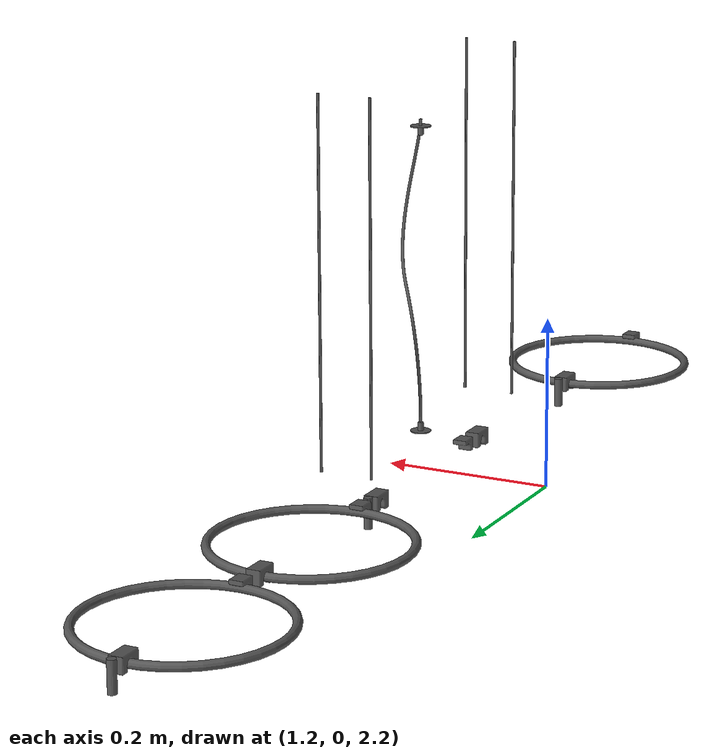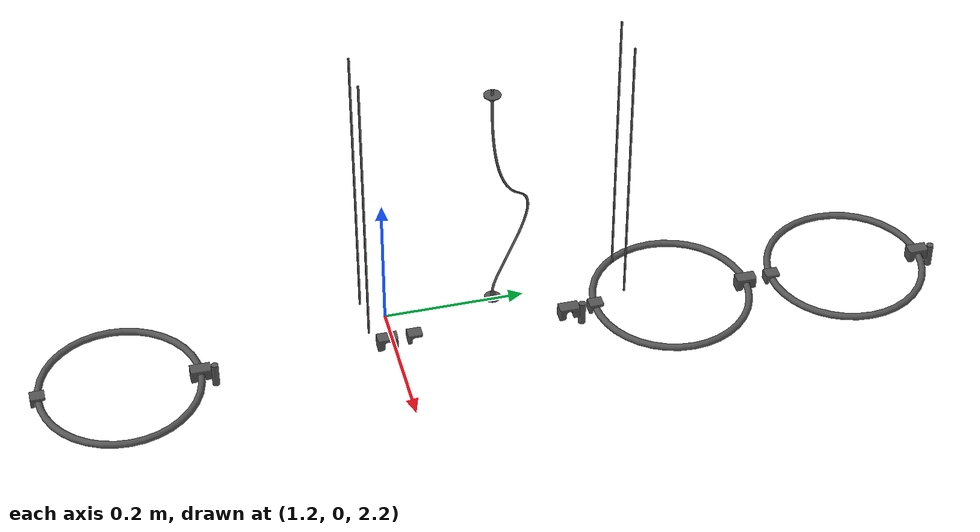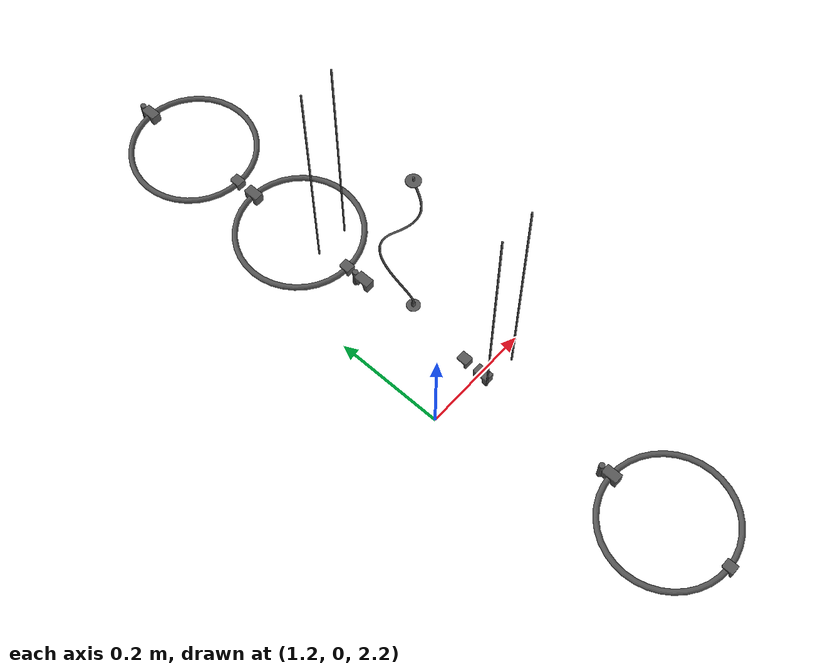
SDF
<sdf version="1.6">
 <world name="default">
  <model name="part40.obj">
   <static>1</static>
   <pose>-12.0 -13.9 0 0 0 0</pose>
   <link name="link_d40">
    <inertial>
     <mass>0</mass>
     <inertia>
      <ixx>0.166667</ixx>
      <ixy>0</ixy>
      <ixz>0</ixz>
      <iyy>0.166667</iyy>
      <iyz>0</iyz>
      <izz>0.166667</izz>
     </inertia>
    </inertial>
    <collision concave="yes" name="collision_40">
     <geometry><mesh><scale>.1 .1 .1</scale><uri>fatihrmutfak/part40.obj</uri></mesh></geometry>
    </collision>
    <visual name="visual">
     <geometry><mesh><scale>.1 .1 .1</scale><uri>fatihrmutfak/part40.obj</uri></mesh></geometry>
     <material>
      <ambient>1 0 0 1</ambient>
      <diffuse>0.337300 0.337300 0.337300 1</diffuse>
      <specular>0.1 0.1 0.1 1</specular>
      <emissive>0 0 0 0</emissive>
     </material>
    </visual>
   </link>
  </model>
  <model name="part41.obj">
   <static>1</static>
   <pose>-12.0 -13.9 0 0 0 0</pose>
   <link name="link_d41">
    <inertial>
     <mass>0</mass>
     <inertia>
      <ixx>0.166667</ixx>
      <ixy>0</ixy>
      <ixz>0</ixz>
      <iyy>0.166667</iyy>
      <iyz>0</iyz>
      <izz>0.166667</izz>
     </inertia>
    </inertial>
    <collision concave="yes" name="collision_41">
     <geometry><mesh><scale>.1 .1 .1</scale><uri>fatihrmutfak/part41.obj</uri></mesh></geometry>
    </collision>
    <visual name="visual">
     <geometry><mesh><scale>.1 .1 .1</scale><uri>fatihrmutfak/part41.obj</uri></mesh></geometry>
     <material>
      <ambient>1 0 0 1</ambient>
      <diffuse>0.337300 0.337300 0.337300 1</diffuse>
      <specular>0.1 0.1 0.1 1</specular>
      <emissive>0 0 0 0</emissive>
     </material>
    </visual>
   </link>
  </model>
  <model name="part42.obj">
   <static>1</static>
   <pose>-12.0 -13.9 0 0 0 0</pose>
   <link name="link_d42">
    <inertial>
     <mass>0</mass>
     <inertia>
      <ixx>0.166667</ixx>
      <ixy>0</ixy>
      <ixz>0</ixz>
      <iyy>0.166667</iyy>
      <iyz>0</iyz>
      <izz>0.166667</izz>
     </inertia>
    </inertial>
    <collision concave="yes" name="collision_42">
     <geometry><mesh><scale>.1 .1 .1</scale><uri>fatihrmutfak/part42.obj</uri></mesh></geometry>
    </collision>
    <visual name="visual">
     <geometry><mesh><scale>.1 .1 .1</scale><uri>fatihrmutfak/part42.obj</uri></mesh></geometry>
     <material>
      <ambient>1 0 0 1</ambient>
      <diffuse>0.337300 0.337300 0.337300 1</diffuse>
      <specular>0.1 0.1 0.1 1</specular>
      <emissive>0 0 0 0</emissive>
     </material>
    </visual>
   </link>
  </model>
  <model name="part43.obj">
   <static>1</static>
   <pose>-12.0 -13.9 0 0 0 0</pose>
   <link name="link_d43">
    <inertial>
     <mass>0</mass>
     <inertia>
      <ixx>0.166667</ixx>
      <ixy>0</ixy>
      <ixz>0</ixz>
      <iyy>0.166667</iyy>
      <iyz>0</iyz>
      <izz>0.166667</izz>
     </inertia>
    </inertial>
    <collision concave="yes" name="collision_43">
     <geometry><mesh><scale>.1 .1 .1</scale><uri>fatihrmutfak/part43.obj</uri></mesh></geometry>
    </collision>
    <visual name="visual">
     <geometry><mesh><scale>.1 .1 .1</scale><uri>fatihrmutfak/part43.obj</uri></mesh></geometry>
     <material>
      <ambient>1 0 0 1</ambient>
      <diffuse>0.337300 0.337300 0.337300 1</diffuse>
      <specular>0.1 0.1 0.1 1</specular>
      <emissive>0 0 0 0</emissive>
     </material>
    </visual>
   </link>
  </model>
  <model name="part44.obj">
   <static>1</static>
   <pose>-12.0 -13.9 0 0 0 0</pose>
   <link name="link_d44">
    <inertial>
     <mass>0</mass>
     <inertia>
      <ixx>0.166667</ixx>
      <ixy>0</ixy>
      <ixz>0</ixz>
      <iyy>0.166667</iyy>
      <iyz>0</iyz>
      <izz>0.166667</izz>
     </inertia>
    </inertial>
    <collision concave="yes" name="collision_44">
     <geometry><mesh><scale>.1 .1 .1</scale><uri>fatihrmutfak/part44.obj</uri></mesh></geometry>
    </collision>
    <visual name="visual">
     <geometry><mesh><scale>.1 .1 .1</scale><uri>fatihrmutfak/part44.obj</uri></mesh></geometry>
     <material>
      <ambient>1 0 0 1</ambient>
      <diffuse>0.337300 0.337300 0.337300 1</diffuse>
      <specular>0.1 0.1 0.1 1</specular>
      <emissive>0 0 0 0</emissive>
     </material>
    </visual>
   </link>
  </model>
  <model name="part45.obj">
   <static>1</static>
   <pose>-12.0 -13.9 0 0 0 0</pose>
   <link name="link_d45">
    <inertial>
     <mass>0</mass>
     <inertia>
      <ixx>0.166667</ixx>
      <ixy>0</ixy>
      <ixz>0</ixz>
      <iyy>0.166667</iyy>
      <iyz>0</iyz>
      <izz>0.166667</izz>
     </inertia>
    </inertial>
    <collision concave="yes" name="collision_45">
     <geometry><mesh><scale>.1 .1 .1</scale><uri>fatihrmutfak/part45.obj</uri></mesh></geometry>
    </collision>
    <visual name="visual">
     <geometry><mesh><scale>.1 .1 .1</scale><uri>fatihrmutfak/part45.obj</uri></mesh></geometry>
     <material>
      <ambient>1 0 0 1</ambient>
      <diffuse>0.337300 0.337300 0.337300 1</diffuse>
      <specular>0.1 0.1 0.1 1</specular>
      <emissive>0 0 0 0</emissive>
     </material>
    </visual>
   </link>
  </model>
  <model name="part46.obj">
   <static>1</static>
   <pose>-12.0 -13.9 0 0 0 0</pose>
   <link name="link_d46">
    <inertial>
     <mass>0</mass>
     <inertia>
      <ixx>0.166667</ixx>
      <ixy>0</ixy>
      <ixz>0</ixz>
      <iyy>0.166667</iyy>
      <iyz>0</iyz>
      <izz>0.166667</izz>
     </inertia>
    </inertial>
    <collision concave="yes" name="collision_46">
     <geometry><mesh><scale>.1 .1 .1</scale><uri>fatihrmutfak/part46.obj</uri></mesh></geometry>
    </collision>
    <visual name="visual">
     <geometry><mesh><scale>.1 .1 .1</scale><uri>fatihrmutfak/part46.obj</uri></mesh></geometry>
     <material>
      <ambient>1 0 0 1</ambient>
      <diffuse>0.337300 0.337300 0.337300 1</diffuse>
      <specular>0.1 0.1 0.1 1</specular>
      <emissive>0 0 0 0</emissive>
     </material>
    </visual>
   </link>
  </model>
  <model name="part47.obj">
   <static>1</static>
   <pose>-12.0 -13.9 0 0 0 0</pose>
   <link name="link_d47">
    <inertial>
     <mass>0</mass>
     <inertia>
      <ixx>0.166667</ixx>
      <ixy>0</ixy>
      <ixz>0</ixz>
      <iyy>0.166667</iyy>
      <iyz>0</iyz>
      <izz>0.166667</izz>
     </inertia>
    </inertial>
    <collision concave="yes" name="collision_47">
     <geometry><mesh><scale>.1 .1 .1</scale><uri>fatihrmutfak/part47.obj</uri></mesh></geometry>
    </collision>
    <visual name="visual">
     <geometry><mesh><scale>.1 .1 .1</scale><uri>fatihrmutfak/part47.obj</uri></mesh></geometry>
     <material>
      <ambient>1 0 0 1</ambient>
      <diffuse>0.337300 0.337300 0.337300 1</diffuse>
      <specular>0.1 0.1 0.1 1</specular>
      <emissive>0 0 0 0</emissive>
     </material>
    </visual>
   </link>
  </model>
  <model name="part48.obj">
   <static>1</static>
   <pose>-12.0 -13.9 0 0 0 0</pose>
   <link name="link_d48">
    <inertial>
     <mass>0</mass>
     <inertia>
      <ixx>0.166667</ixx>
      <ixy>0</ixy>
      <ixz>0</ixz>
      <iyy>0.166667</iyy>
      <iyz>0</iyz>
      <izz>0.166667</izz>
     </inertia>
    </inertial>
    <collision concave="yes" name="collision_48">
     <geometry><mesh><scale>.1 .1 .1</scale><uri>fatihrmutfak/part48.obj</uri></mesh></geometry>
    </collision>
    <visual name="visual">
     <geometry><mesh><scale>.1 .1 .1</scale><uri>fatihrmutfak/part48.obj</uri></mesh></geometry>
     <material>
      <ambient>1 0 0 1</ambient>
      <diffuse>0.337300 0.337300 0.337300 1</diffuse>
      <specular>0.1 0.1 0.1 1</specular>
      <emissive>0 0 0 0</emissive>
     </material>
    </visual>
   </link>
  </model>
  <model name="part49.obj">
   <static>1</static>
   <pose>-12.0 -13.9 0 0 0 0</pose>
   <link name="link_d49">
    <inertial>
     <mass>0</mass>
     <inertia>
      <ixx>0.166667</ixx>
      <ixy>0</ixy>
      <ixz>0</ixz>
      <iyy>0.166667</iyy>
      <iyz>0</iyz>
      <izz>0.166667</izz>
     </inertia>
    </inertial>
    <collision concave="yes" name="collision_49">
     <geometry><mesh><scale>.1 .1 .1</scale><uri>fatihrmutfak/part49.obj</uri></mesh></geometry>
    </collision>
    <visual name="visual">
     <geometry><mesh><scale>.1 .1 .1</scale><uri>fatihrmutfak/part49.obj</uri></mesh></geometry>
     <material>
      <ambient>1 0 0 1</ambient>
      <diffuse>0.337300 0.337300 0.337300 1</diffuse>
      <specular>0.1 0.1 0.1 1</specular>
      <emissive>0 0 0 0</emissive>
     </material>
    </visual>
   </link>
  </model>
  <model name="part50.obj">
   <static>1</static>
   <pose>-12.0 -13.9 0 0 0 0</pose>
   <link name="link_d50">
    <inertial>
     <mass>0</mass>
     <inertia>
      <ixx>0.166667</ixx>
      <ixy>0</ixy>
      <ixz>0</ixz>
      <iyy>0.166667</iyy>
      <iyz>0</iyz>
      <izz>0.166667</izz>
     </inertia>
    </inertial>
    <collision concave="yes" name="collision_50">
     <geometry><mesh><scale>.1 .1 .1</scale><uri>fatihrmutfak/part50.obj</uri></mesh></geometry>
    </collision>
    <visual name="visual">
     <geometry><mesh><scale>.1 .1 .1</scale><uri>fatihrmutfak/part50.obj</uri></mesh></geometry>
     <material>
      <ambient>1 0 0 1</ambient>
      <diffuse>0.337300 0.337300 0.337300 1</diffuse>
      <specular>0.1 0.1 0.1 1</specular>
      <emissive>0 0 0 0</emissive>
     </material>
    </visual>
   </link>
  </model>
  <model name="part51.obj">
   <static>1</static>
   <pose>-12.0 -13.9 0 0 0 0</pose>
   <link name="link_d51">
    <inertial>
     <mass>0</mass>
     <inertia>
      <ixx>0.166667</ixx>
      <ixy>0</ixy>
      <ixz>0</ixz>
      <iyy>0.166667</iyy>
      <iyz>0</iyz>
      <izz>0.166667</izz>
     </inertia>
    </inertial>
    <collision concave="yes" name="collision_51">
     <geometry><mesh><scale>.1 .1 .1</scale><uri>fatihrmutfak/part51.obj</uri></mesh></geometry>
    </collision>
    <visual name="visual">
     <geometry><mesh><scale>.1 .1 .1</scale><uri>fatihrmutfak/part51.obj</uri></mesh></geometry>
     <material>
      <ambient>1 0 0 1</ambient>
      <diffuse>0.337300 0.337300 0.337300 1</diffuse>
      <specular>0.1 0.1 0.1 1</specular>
      <emissive>0 0 0 0</emissive>
     </material>
    </visual>
   </link>
  </model>
  <model name="part52.obj">
   <static>1</static>
   <pose>-12.0 -13.9 0 0 0 0</pose>
   <link name="link_d52">
    <inertial>
     <mass>0</mass>
     <inertia>
      <ixx>0.166667</ixx>
      <ixy>0</ixy>
      <ixz>0</ixz>
      <iyy>0.166667</iyy>
      <iyz>0</iyz>
      <izz>0.166667</izz>
     </inertia>
    </inertial>
    <collision concave="yes" name="collision_52">
     <geometry><mesh><scale>.1 .1 .1</scale><uri>fatihrmutfak/part52.obj</uri></mesh></geometry>
    </collision>
    <visual name="visual">
     <geometry><mesh><scale>.1 .1 .1</scale><uri>fatihrmutfak/part52.obj</uri></mesh></geometry>
     <material>
      <ambient>1 0 0 1</ambient>
      <diffuse>0.337300 0.337300 0.337300 1</diffuse>
      <specular>0.1 0.1 0.1 1</specular>
      <emissive>0 0 0 0</emissive>
     </material>
    </visual>
   </link>
  </model>
  <model name="part53.obj">
   <static>1</static>
   <pose>-12.0 -13.9 0 0 0 0</pose>
   <link name="link_d53">
    <inertial>
     <mass>0</mass>
     <inertia>
      <ixx>0.166667</ixx>
      <ixy>0</ixy>
      <ixz>0</ixz>
      <iyy>0.166667</iyy>
      <iyz>0</iyz>
      <izz>0.166667</izz>
     </inertia>
    </inertial>
    <collision concave="yes" name="collision_53">
     <geometry><mesh><scale>.1 .1 .1</scale><uri>fatihrmutfak/part53.obj</uri></mesh></geometry>
    </collision>
    <visual name="visual">
     <geometry><mesh><scale>.1 .1 .1</scale><uri>fatihrmutfak/part53.obj</uri></mesh></geometry>
     <material>
      <ambient>1 0 0 1</ambient>
      <diffuse>0.337300 0.337300 0.337300 1</diffuse>
      <specular>0.1 0.1 0.1 1</specular>
      <emissive>0 0 0 0</emissive>
     </material>
    </visual>
   </link>
  </model>
  <model name="part54.obj">
   <static>1</static>
   <pose>-12.0 -13.9 0 0 0 0</pose>
   <link name="link_d54">
    <inertial>
     <mass>0</mass>
     <inertia>
      <ixx>0.166667</ixx>
      <ixy>0</ixy>
      <ixz>0</ixz>
      <iyy>0.166667</iyy>
      <iyz>0</iyz>
      <izz>0.166667</izz>
     </inertia>
    </inertial>
    <collision concave="yes" name="collision_54">
     <geometry><mesh><scale>.1 .1 .1</scale><uri>fatihrmutfak/part54.obj</uri></mesh></geometry>
    </collision>
    <visual name="visual">
     <geometry><mesh><scale>.1 .1 .1</scale><uri>fatihrmutfak/part54.obj</uri></mesh></geometry>
     <material>
      <ambient>1 0 0 1</ambient>
      <diffuse>0.337300 0.337300 0.337300 1</diffuse>
      <specular>0.1 0.1 0.1 1</specular>
      <emissive>0 0 0 0</emissive>
     </material>
    </visual>
   </link>
  </model>
  <model name="part55.obj">
   <static>1</static>
   <pose>-12.0 -13.9 0 0 0 0</pose>
   <link name="link_d55">
    <inertial>
     <mass>0</mass>
     <inertia>
      <ixx>0.166667</ixx>
      <ixy>0</ixy>
      <ixz>0</ixz>
      <iyy>0.166667</iyy>
      <iyz>0</iyz>
      <izz>0.166667</izz>
     </inertia>
    </inertial>
    <collision concave="yes" name="collision_55">
     <geometry><mesh><scale>.1 .1 .1</scale><uri>fatihrmutfak/part55.obj</uri></mesh></geometry>
    </collision>
    <visual name="visual">
     <geometry><mesh><scale>.1 .1 .1</scale><uri>fatihrmutfak/part55.obj</uri></mesh></geometry>
     <material>
      <ambient>1 0 0 1</ambient>
      <diffuse>0.337300 0.337300 0.337300 1</diffuse>
      <specular>0.1 0.1 0.1 1</specular>
      <emissive>0 0 0 0</emissive>
     </material>
    </visual>
   </link>
  </model>
  <model name="part56.obj">
   <static>1</static>
   <pose>-12.0 -13.9 0 0 0 0</pose>
   <link name="link_d56">
    <inertial>
     <mass>0</mass>
     <inertia>
      <ixx>0.166667</ixx>
      <ixy>0</ixy>
      <ixz>0</ixz>
      <iyy>0.166667</iyy>
      <iyz>0</iyz>
      <izz>0.166667</izz>
     </inertia>
    </inertial>
    <collision concave="yes" name="collision_56">
     <geometry><mesh><scale>.1 .1 .1</scale><uri>fatihrmutfak/part56.obj</uri></mesh></geometry>
    </collision>
    <visual name="visual">
     <geometry><mesh><scale>.1 .1 .1</scale><uri>fatihrmutfak/part56.obj</uri></mesh></geometry>
     <material>
      <ambient>1 0 0 1</ambient>
      <diffuse>0.337300 0.337300 0.337300 1</diffuse>
      <specular>0.1 0.1 0.1 1</specular>
      <emissive>0 0 0 0</emissive>
     </material>
    </visual>
   </link>
  </model>
  <model name="part57.obj">
   <static>1</static>
   <pose>-12.0 -13.9 0 0 0 0</pose>
   <link name="link_d57">
    <inertial>
     <mass>0</mass>
     <inertia>
      <ixx>0.166667</ixx>
      <ixy>0</ixy>
      <ixz>0</ixz>
      <iyy>0.166667</iyy>
      <iyz>0</iyz>
      <izz>0.166667</izz>
     </inertia>
    </inertial>
    <collision concave="yes" name="collision_57">
     <geometry><mesh><scale>.1 .1 .1</scale><uri>fatihrmutfak/part57.obj</uri></mesh></geometry>
    </collision>
    <visual name="visual">
     <geometry><mesh><scale>.1 .1 .1</scale><uri>fatihrmutfak/part57.obj</uri></mesh></geometry>
     <material>
      <ambient>1 0 0 1</ambient>
      <diffuse>0.337300 0.337300 0.337300 1</diffuse>
      <specular>0.1 0.1 0.1 1</specular>
      <emissive>0 0 0 0</emissive>
     </material>
    </visual>
   </link>
  </model>
  <model name="part58.obj">
   <static>1</static>
   <pose>-12.0 -13.9 0 0 0 0</pose>
   <link name="link_d58">
    <inertial>
     <mass>0</mass>
     <inertia>
      <ixx>0.166667</ixx>
      <ixy>0</ixy>
      <ixz>0</ixz>
      <iyy>0.166667</iyy>
      <iyz>0</iyz>
      <izz>0.166667</izz>
     </inertia>
    </inertial>
    <collision concave="yes" name="collision_58">
     <geometry><mesh><scale>.1 .1 .1</scale><uri>fatihrmutfak/part58.obj</uri></mesh></geometry>
    </collision>
    <visual name="visual">
     <geometry><mesh><scale>.1 .1 .1</scale><uri>fatihrmutfak/part58.obj</uri></mesh></geometry>
     <material>
      <ambient>1 0 0 1</ambient>
      <diffuse>0.337300 0.337300 0.337300 1</diffuse>
      <specular>0.1 0.1 0.1 1</specular>
      <emissive>0 0 0 0</emissive>
     </material>
    </visual>
   </link>
  </model>
  <model name="part59.obj">
   <static>1</static>
   <pose>-12.0 -13.9 0 0 0 0</pose>
   <link name="link_d59">
    <inertial>
     <mass>0</mass>
     <inertia>
      <ixx>0.166667</ixx>
      <ixy>0</ixy>
      <ixz>0</ixz>
      <iyy>0.166667</iyy>
      <iyz>0</iyz>
      <izz>0.166667</izz>
     </inertia>
    </inertial>
    <collision concave="yes" name="collision_59">
     <geometry><mesh><scale>.1 .1 .1</scale><uri>fatihrmutfak/part59.obj</uri></mesh></geometry>
    </collision>
    <visual name="visual">
     <geometry><mesh><scale>.1 .1 .1</scale><uri>fatihrmutfak/part59.obj</uri></mesh></geometry>
     <material>
      <ambient>1 0 0 1</ambient>
      <diffuse>0.337300 0.337300 0.337300 1</diffuse>
      <specular>0.1 0.1 0.1 1</specular>
      <emissive>0 0 0 0</emissive>
     </material>
    </visual>
   </link>
  </model>
 </world>
</sdf>
